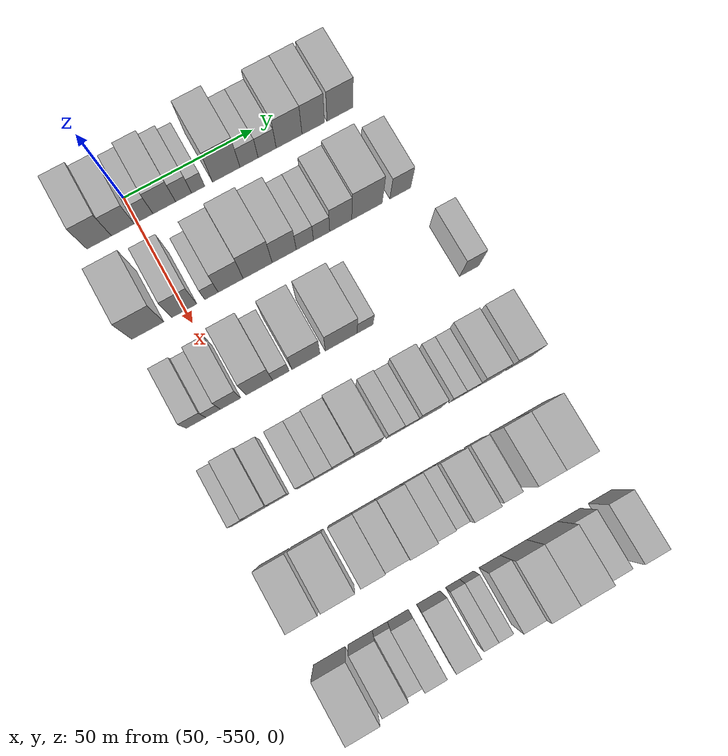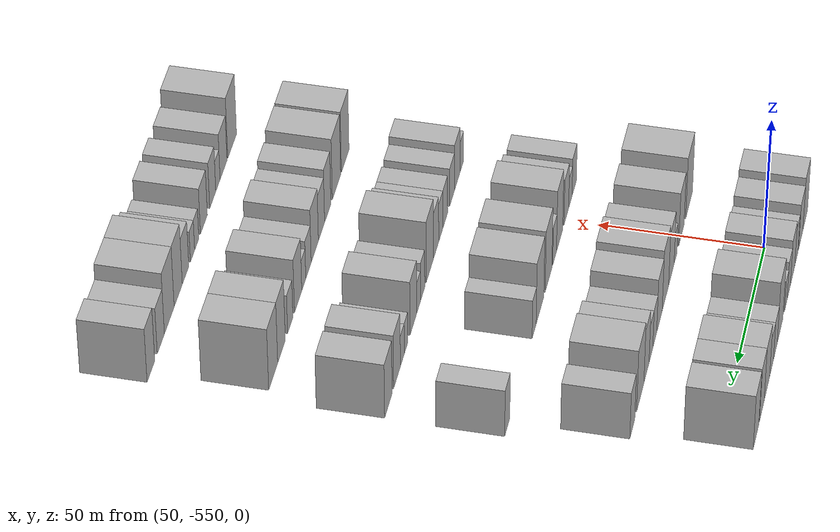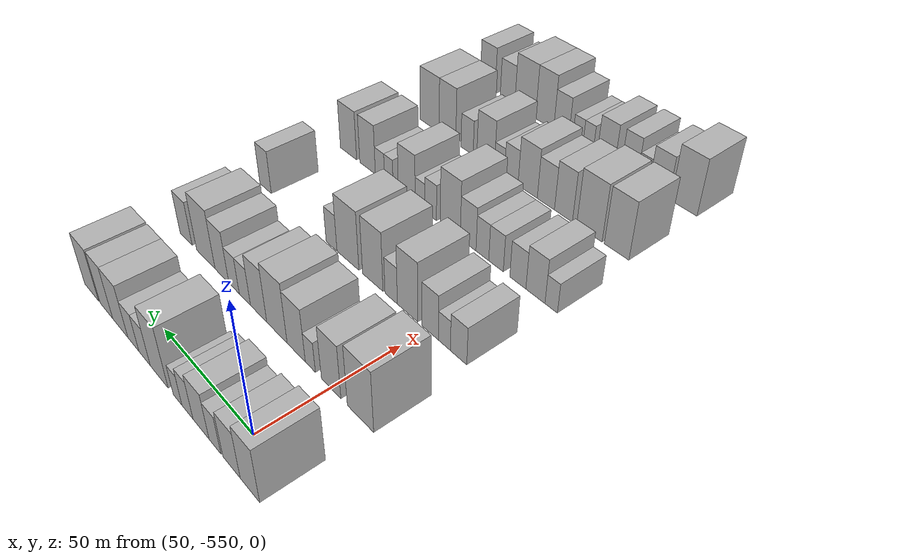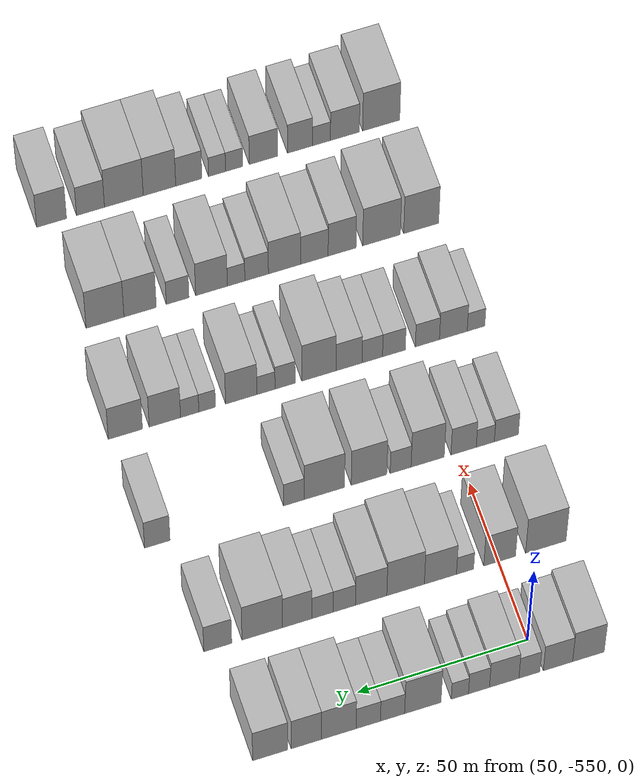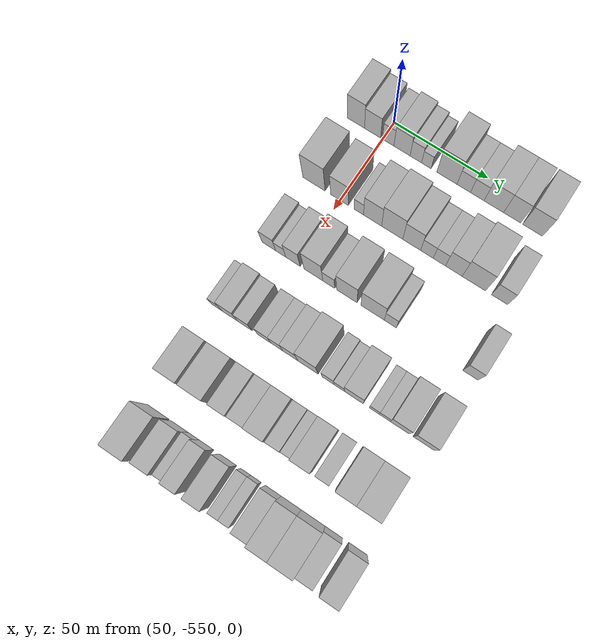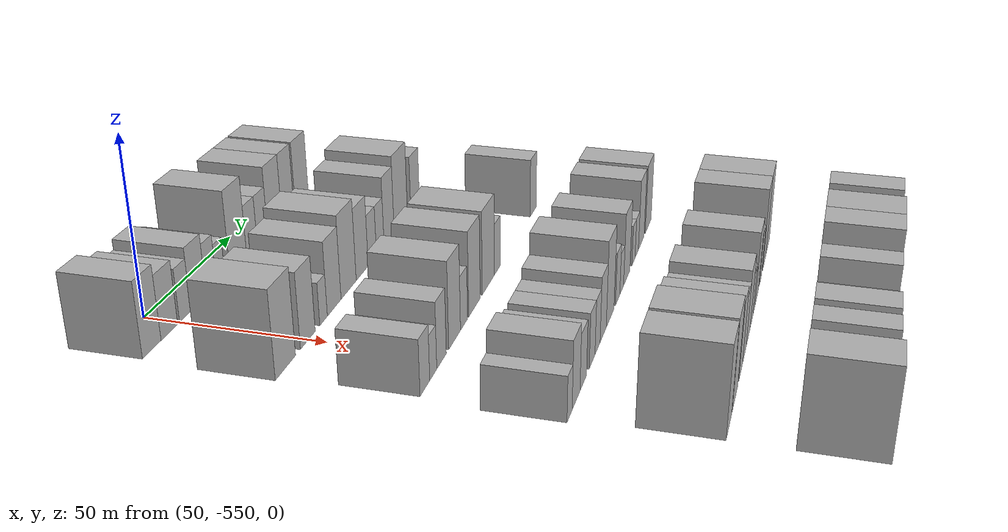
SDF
<sdf version="1.6">
 <world name="default">
  <model name="building_1">
   <static>1</static>
   <pose>50.0000 -564.3511 0 0.000000 0.000000 0.000000</pose>
   <link name="link">
    <pose>0 0 10.50 0 0 0</pose>
    <collision name="collision"><geometry><box><size>20.0000 9.2977 21.0000</size></box></geometry></collision>
    <visual name="visual">
     <cast_shadows>0</cast_shadows>
     <geometry><box><size>20.0000 9.2977 21.0000</size></box></geometry>
     <material>
      <script>
       <uri>model://HANNAS_wall/materials/scripts</uri>
       <uri>model://HANNAS_wall/materials/textures</uri>
       <name>vrc/HANNAS_wall</name>
      </script>
     </material>
    </visual>
   </link>
  </model>
  <model name="building_2">
   <static>1</static>
   <pose>50.0000 -555.3722 0 0.000000 0.000000 0.000000</pose>
   <link name="link">
    <pose>0 0 9.00 0 0 0</pose>
    <collision name="collision"><geometry><box><size>20.0000 8.6602 18.0000</size></box></geometry></collision>
    <visual name="visual">
     <cast_shadows>0</cast_shadows>
     <geometry><box><size>20.0000 8.6602 18.0000</size></box></geometry>
     <material>
      <script>
       <uri>model://HANNAS_wall/materials/scripts</uri>
       <uri>model://HANNAS_wall/materials/textures</uri>
       <name>vrc/HANNAS_wall</name>
      </script>
     </material>
    </visual>
   </link>
  </model>
  <model name="building_3">
   <static>1</static>
   <pose>50.0000 -546.9544 0 0.000000 0.000000 0.000000</pose>
   <link name="link">
    <pose>0 0 7.50 0 0 0</pose>
    <collision name="collision"><geometry><box><size>20.0000 6.1754 15.0000</size></box></geometry></collision>
    <visual name="visual">
     <cast_shadows>0</cast_shadows>
     <geometry><box><size>20.0000 6.1754 15.0000</size></box></geometry>
     <material>
      <script>
       <uri>model://HANNAS_wall/materials/scripts</uri>
       <uri>model://HANNAS_wall/materials/textures</uri>
       <name>vrc/HANNAS_wall</name>
      </script>
     </material>
    </visual>
   </link>
  </model>
  <model name="building_4">
   <static>1</static>
   <pose>50.0000 -539.5403 0 0.000000 0.000000 0.000000</pose>
   <link name="link">
    <pose>0 0 9.00 0 0 0</pose>
    <collision name="collision"><geometry><box><size>20.0000 8.6526 18.0000</size></box></geometry></collision>
    <visual name="visual">
     <cast_shadows>0</cast_shadows>
     <geometry><box><size>20.0000 8.6526 18.0000</size></box></geometry>
     <material>
      <script>
       <uri>model://HANNAS_wall/materials/scripts</uri>
       <uri>model://HANNAS_wall/materials/textures</uri>
       <name>vrc/HANNAS_wall</name>
      </script>
     </material>
    </visual>
   </link>
  </model>
  <model name="building_5">
   <static>1</static>
   <pose>50.0000 -532.1330 0 0.000000 0.000000 0.000000</pose>
   <link name="link">
    <pose>0 0 7.50 0 0 0</pose>
    <collision name="collision"><geometry><box><size>20.0000 6.1619 15.0000</size></box></geometry></collision>
    <visual name="visual">
     <cast_shadows>0</cast_shadows>
     <geometry><box><size>20.0000 6.1619 15.0000</size></box></geometry>
     <material>
      <script>
       <uri>model://HANNAS_wall/materials/scripts</uri>
       <uri>model://HANNAS_wall/materials/textures</uri>
       <name>vrc/HANNAS_wall</name>
      </script>
     </material>
    </visual>
   </link>
  </model>
  <model name="building_6">
   <static>1</static>
   <pose>50.0000 -526.5214 0 0.000000 0.000000 0.000000</pose>
   <link name="link">
    <pose>0 0 6.00 0 0 0</pose>
    <collision name="collision"><geometry><box><size>20.0000 5.0614 12.0000</size></box></geometry></collision>
    <visual name="visual">
     <cast_shadows>0</cast_shadows>
     <geometry><box><size>20.0000 5.0614 12.0000</size></box></geometry>
     <material>
      <script>
       <uri>model://HANNAS_wall/materials/scripts</uri>
       <uri>model://HANNAS_wall/materials/textures</uri>
       <name>vrc/HANNAS_wall</name>
      </script>
     </material>
    </visual>
   </link>
  </model>
  <model name="building_7">
   <static>1</static>
   <pose>50.0000 -515.6604 0 0.000000 0.000000 0.000000</pose>
   <link name="link">
    <pose>0 0 12.00 0 0 0</pose>
    <collision name="collision"><geometry><box><size>20.0000 10.6606 24.0000</size></box></geometry></collision>
    <visual name="visual">
     <cast_shadows>0</cast_shadows>
     <geometry><box><size>20.0000 10.6606 24.0000</size></box></geometry>
     <material>
      <script>
       <uri>model://HANNAS_wall/materials/scripts</uri>
       <uri>model://HANNAS_wall/materials/textures</uri>
       <name>vrc/HANNAS_wall</name>
      </script>
     </material>
    </visual>
   </link>
  </model>
  <model name="building_8">
   <static>1</static>
   <pose>50.0000 -506.7979 0 0.000000 0.000000 0.000000</pose>
   <link name="link">
    <pose>0 0 7.50 0 0 0</pose>
    <collision name="collision"><geometry><box><size>20.0000 7.0643 15.0000</size></box></geometry></collision>
    <visual name="visual">
     <cast_shadows>0</cast_shadows>
     <geometry><box><size>20.0000 7.0643 15.0000</size></box></geometry>
     <material>
      <script>
       <uri>model://HANNAS_wall/materials/scripts</uri>
       <uri>model://HANNAS_wall/materials/textures</uri>
       <name>vrc/HANNAS_wall</name>
      </script>
     </material>
    </visual>
   </link>
  </model>
  <model name="building_9">
   <static>1</static>
   <pose>50.0000 -499.7138 0 0.000000 0.000000 0.000000</pose>
   <link name="link">
    <pose>0 0 7.50 0 0 0</pose>
    <collision name="collision"><geometry><box><size>20.0000 7.1040 15.0000</size></box></geometry></collision>
    <visual name="visual">
     <cast_shadows>0</cast_shadows>
     <geometry><box><size>20.0000 7.1040 15.0000</size></box></geometry>
     <material>
      <script>
       <uri>model://HANNAS_wall/materials/scripts</uri>
       <uri>model://HANNAS_wall/materials/textures</uri>
       <name>vrc/HANNAS_wall</name>
      </script>
     </material>
    </visual>
   </link>
  </model>
  <model name="building_10">
   <static>1</static>
   <pose>50.0000 -491.1028 0 0.000000 0.000000 0.000000</pose>
   <link name="link">
    <pose>0 0 10.50 0 0 0</pose>
    <collision name="collision"><geometry><box><size>20.0000 10.1180 21.0000</size></box></geometry></collision>
    <visual name="visual">
     <cast_shadows>0</cast_shadows>
     <geometry><box><size>20.0000 10.1180 21.0000</size></box></geometry>
     <material>
      <script>
       <uri>model://HANNAS_wall/materials/scripts</uri>
       <uri>model://HANNAS_wall/materials/textures</uri>
       <name>vrc/HANNAS_wall</name>
      </script>
     </material>
    </visual>
   </link>
  </model>
  <model name="building_11">
   <static>1</static>
   <pose>50.0000 -481.6305 0 0.000000 0.000000 0.000000</pose>
   <link name="link">
    <pose>0 0 10.50 0 0 0</pose>
    <collision name="collision"><geometry><box><size>20.0000 8.8265 21.0000</size></box></geometry></collision>
    <visual name="visual">
     <cast_shadows>0</cast_shadows>
     <geometry><box><size>20.0000 8.8265 21.0000</size></box></geometry>
     <material>
      <script>
       <uri>model://HANNAS_wall/materials/scripts</uri>
       <uri>model://HANNAS_wall/materials/textures</uri>
       <name>vrc/HANNAS_wall</name>
      </script>
     </material>
    </visual>
   </link>
  </model>
  <model name="building_12">
   <static>1</static>
   <pose>50.0000 -471.1323 0 0.000000 0.000000 0.000000</pose>
   <link name="link">
    <pose>0 0 10.50 0 0 0</pose>
    <collision name="collision"><geometry><box><size>20.0000 10.1699 21.0000</size></box></geometry></collision>
    <visual name="visual">
     <cast_shadows>0</cast_shadows>
     <geometry><box><size>20.0000 10.1699 21.0000</size></box></geometry>
     <material>
      <script>
       <uri>model://HANNAS_wall/materials/scripts</uri>
       <uri>model://HANNAS_wall/materials/textures</uri>
       <name>vrc/HANNAS_wall</name>
      </script>
     </material>
    </visual>
   </link>
  </model>
  <model name="building_132">
   <static>1</static>
   <pose>85.0000 -564.0034 0 0.000000 0.000000 0.000000</pose>
   <link name="link">
    <pose>0 0 12.00 0 0 0</pose>
    <collision name="collision"><geometry><box><size>20.0000 11.9931 24.0000</size></box></geometry></collision>
    <visual name="visual">
     <cast_shadows>0</cast_shadows>
     <geometry><box><size>20.0000 11.9931 24.0000</size></box></geometry>
     <material>
      <script>
       <uri>model://HANNAS_wall/materials/scripts</uri>
       <uri>model://HANNAS_wall/materials/textures</uri>
       <name>vrc/HANNAS_wall</name>
      </script>
     </material>
    </visual>
   </link>
  </model>
  <model name="building_133">
   <static>1</static>
   <pose>85.0000 -550.2994 0 0.000000 0.000000 0.000000</pose>
   <link name="link">
    <pose>0 0 10.50 0 0 0</pose>
    <collision name="collision"><geometry><box><size>20.0000 9.4150 21.0000</size></box></geometry></collision>
    <visual name="visual">
     <cast_shadows>0</cast_shadows>
     <geometry><box><size>20.0000 9.4150 21.0000</size></box></geometry>
     <material>
      <script>
       <uri>model://HANNAS_wall/materials/scripts</uri>
       <uri>model://HANNAS_wall/materials/textures</uri>
       <name>vrc/HANNAS_wall</name>
      </script>
     </material>
    </visual>
   </link>
  </model>
  <model name="building_134">
   <static>1</static>
   <pose>85.0000 -540.0527 0 0.000000 0.000000 0.000000</pose>
   <link name="link">
    <pose>0 0 6.00 0 0 0</pose>
    <collision name="collision"><geometry><box><size>20.0000 5.0783 12.0000</size></box></geometry></collision>
    <visual name="visual">
     <cast_shadows>0</cast_shadows>
     <geometry><box><size>20.0000 5.0783 12.0000</size></box></geometry>
     <material>
      <script>
       <uri>model://HANNAS_wall/materials/scripts</uri>
       <uri>model://HANNAS_wall/materials/textures</uri>
       <name>vrc/HANNAS_wall</name>
      </script>
     </material>
    </visual>
   </link>
  </model>
  <model name="building_135">
   <static>1</static>
   <pose>85.0000 -532.7603 0 0.000000 0.000000 0.000000</pose>
   <link name="link">
    <pose>0 0 10.50 0 0 0</pose>
    <collision name="collision"><geometry><box><size>20.0000 9.5066 21.0000</size></box></geometry></collision>
    <visual name="visual">
     <cast_shadows>0</cast_shadows>
     <geometry><box><size>20.0000 9.5066 21.0000</size></box></geometry>
     <material>
      <script>
       <uri>model://HANNAS_wall/materials/scripts</uri>
       <uri>model://HANNAS_wall/materials/textures</uri>
       <name>vrc/HANNAS_wall</name>
      </script>
     </material>
    </visual>
   </link>
  </model>
  <model name="building_136">
   <static>1</static>
   <pose>85.0000 -522.4589 0 0.000000 0.000000 0.000000</pose>
   <link name="link">
    <pose>0 0 12.00 0 0 0</pose>
    <collision name="collision"><geometry><box><size>20.0000 11.0961 24.0000</size></box></geometry></collision>
    <visual name="visual">
     <cast_shadows>0</cast_shadows>
     <geometry><box><size>20.0000 11.0961 24.0000</size></box></geometry>
     <material>
      <script>
       <uri>model://HANNAS_wall/materials/scripts</uri>
       <uri>model://HANNAS_wall/materials/textures</uri>
       <name>vrc/HANNAS_wall</name>
      </script>
     </material>
    </visual>
   </link>
  </model>
  <model name="building_137">
   <static>1</static>
   <pose>85.0000 -512.2875 0 0.000000 0.000000 0.000000</pose>
   <link name="link">
    <pose>0 0 10.50 0 0 0</pose>
    <collision name="collision"><geometry><box><size>20.0000 9.2467 21.0000</size></box></geometry></collision>
    <visual name="visual">
     <cast_shadows>0</cast_shadows>
     <geometry><box><size>20.0000 9.2467 21.0000</size></box></geometry>
     <material>
      <script>
       <uri>model://HANNAS_wall/materials/scripts</uri>
       <uri>model://HANNAS_wall/materials/textures</uri>
       <name>vrc/HANNAS_wall</name>
      </script>
     </material>
    </visual>
   </link>
  </model>
  <model name="building_138">
   <static>1</static>
   <pose>85.0000 -504.3648 0 0.000000 0.000000 0.000000</pose>
   <link name="link">
    <pose>0 0 7.50 0 0 0</pose>
    <collision name="collision"><geometry><box><size>20.0000 6.5987 15.0000</size></box></geometry></collision>
    <visual name="visual">
     <cast_shadows>0</cast_shadows>
     <geometry><box><size>20.0000 6.5987 15.0000</size></box></geometry>
     <material>
      <script>
       <uri>model://HANNAS_wall/materials/scripts</uri>
       <uri>model://HANNAS_wall/materials/textures</uri>
       <name>vrc/HANNAS_wall</name>
      </script>
     </material>
    </visual>
   </link>
  </model>
  <model name="building_139">
   <static>1</static>
   <pose>85.0000 -497.9217 0 0.000000 0.000000 0.000000</pose>
   <link name="link">
    <pose>0 0 7.50 0 0 0</pose>
    <collision name="collision"><geometry><box><size>20.0000 6.2874 15.0000</size></box></geometry></collision>
    <visual name="visual">
     <cast_shadows>0</cast_shadows>
     <geometry><box><size>20.0000 6.2874 15.0000</size></box></geometry>
     <material>
      <script>
       <uri>model://HANNAS_wall/materials/scripts</uri>
       <uri>model://HANNAS_wall/materials/textures</uri>
       <name>vrc/HANNAS_wall</name>
      </script>
     </material>
    </visual>
   </link>
  </model>
  <model name="building_140">
   <static>1</static>
   <pose>85.0000 -490.4993 0 0.000000 0.000000 0.000000</pose>
   <link name="link">
    <pose>0 0 10.50 0 0 0</pose>
    <collision name="collision"><geometry><box><size>20.0000 8.5575 21.0000</size></box></geometry></collision>
    <visual name="visual">
     <cast_shadows>0</cast_shadows>
     <geometry><box><size>20.0000 8.5575 21.0000</size></box></geometry>
     <material>
      <script>
       <uri>model://HANNAS_wall/materials/scripts</uri>
       <uri>model://HANNAS_wall/materials/textures</uri>
       <name>vrc/HANNAS_wall</name>
      </script>
     </material>
    </visual>
   </link>
  </model>
  <model name="building_141">
   <static>1</static>
   <pose>85.0000 -480.2726 0 0.000000 0.000000 0.000000</pose>
   <link name="link">
    <pose>0 0 12.00 0 0 0</pose>
    <collision name="collision"><geometry><box><size>20.0000 11.8959 24.0000</size></box></geometry></collision>
    <visual name="visual">
     <cast_shadows>0</cast_shadows>
     <geometry><box><size>20.0000 11.8959 24.0000</size></box></geometry>
     <material>
      <script>
       <uri>model://HANNAS_wall/materials/scripts</uri>
       <uri>model://HANNAS_wall/materials/textures</uri>
       <name>vrc/HANNAS_wall</name>
      </script>
     </material>
    </visual>
   </link>
  </model>
  <model name="building_142">
   <static>1</static>
   <pose>85.0000 -467.2445 0 0.000000 0.000000 0.000000</pose>
   <link name="link">
    <pose>0 0 9.00 0 0 0</pose>
    <collision name="collision"><geometry><box><size>20.0000 8.1602 18.0000</size></box></geometry></collision>
    <visual name="visual">
     <cast_shadows>0</cast_shadows>
     <geometry><box><size>20.0000 8.1602 18.0000</size></box></geometry>
     <material>
      <script>
       <uri>model://HANNAS_wall/materials/scripts</uri>
       <uri>model://HANNAS_wall/materials/textures</uri>
       <name>vrc/HANNAS_wall</name>
      </script>
     </material>
    </visual>
   </link>
  </model>
  <model name="building_257">
   <static>1</static>
   <pose>120.0000 -564.4026 0 0.000000 0.000000 0.000000</pose>
   <link name="link">
    <pose>0 0 7.50 0 0 0</pose>
    <collision name="collision"><geometry><box><size>20.0000 7.1949 15.0000</size></box></geometry></collision>
    <visual name="visual">
     <cast_shadows>0</cast_shadows>
     <geometry><box><size>20.0000 7.1949 15.0000</size></box></geometry>
     <material>
      <script>
       <uri>model://HANNAS_wall/materials/scripts</uri>
       <uri>model://HANNAS_wall/materials/textures</uri>
       <name>vrc/HANNAS_wall</name>
      </script>
     </material>
    </visual>
   </link>
  </model>
  <model name="building_258">
   <static>1</static>
   <pose>120.0000 -558.0997 0 0.000000 0.000000 0.000000</pose>
   <link name="link">
    <pose>0 0 6.00 0 0 0</pose>
    <collision name="collision"><geometry><box><size>20.0000 5.4108 12.0000</size></box></geometry></collision>
    <visual name="visual">
     <cast_shadows>0</cast_shadows>
     <geometry><box><size>20.0000 5.4108 12.0000</size></box></geometry>
     <material>
      <script>
       <uri>model://HANNAS_wall/materials/scripts</uri>
       <uri>model://HANNAS_wall/materials/textures</uri>
       <name>vrc/HANNAS_wall</name>
      </script>
     </material>
    </visual>
   </link>
  </model>
  <model name="building_259">
   <static>1</static>
   <pose>120.0000 -551.6050 0 0.000000 0.000000 0.000000</pose>
   <link name="link">
    <pose>0 0 9.00 0 0 0</pose>
    <collision name="collision"><geometry><box><size>20.0000 7.5788 18.0000</size></box></geometry></collision>
    <visual name="visual">
     <cast_shadows>0</cast_shadows>
     <geometry><box><size>20.0000 7.5788 18.0000</size></box></geometry>
     <material>
      <script>
       <uri>model://HANNAS_wall/materials/scripts</uri>
       <uri>model://HANNAS_wall/materials/textures</uri>
       <name>vrc/HANNAS_wall</name>
      </script>
     </material>
    </visual>
   </link>
  </model>
  <model name="building_260">
   <static>1</static>
   <pose>120.0000 -540.8752 0 0.000000 0.000000 0.000000</pose>
   <link name="link">
    <pose>0 0 12.00 0 0 0</pose>
    <collision name="collision"><geometry><box><size>20.0000 9.8808 24.0000</size></box></geometry></collision>
    <visual name="visual">
     <cast_shadows>0</cast_shadows>
     <geometry><box><size>20.0000 9.8808 24.0000</size></box></geometry>
     <material>
      <script>
       <uri>model://HANNAS_wall/materials/scripts</uri>
       <uri>model://HANNAS_wall/materials/textures</uri>
       <name>vrc/HANNAS_wall</name>
      </script>
     </material>
    </visual>
   </link>
  </model>
  <model name="building_261">
   <static>1</static>
   <pose>120.0000 -532.8202 0 0.000000 0.000000 0.000000</pose>
   <link name="link">
    <pose>0 0 7.50 0 0 0</pose>
    <collision name="collision"><geometry><box><size>20.0000 6.2291 15.0000</size></box></geometry></collision>
    <visual name="visual">
     <cast_shadows>0</cast_shadows>
     <geometry><box><size>20.0000 6.2291 15.0000</size></box></geometry>
     <material>
      <script>
       <uri>model://HANNAS_wall/materials/scripts</uri>
       <uri>model://HANNAS_wall/materials/textures</uri>
       <name>vrc/HANNAS_wall</name>
      </script>
     </material>
    </visual>
   </link>
  </model>
  <model name="building_262">
   <static>1</static>
   <pose>120.0000 -523.4052 0 0.000000 0.000000 0.000000</pose>
   <link name="link">
    <pose>0 0 12.00 0 0 0</pose>
    <collision name="collision"><geometry><box><size>20.0000 10.6009 24.0000</size></box></geometry></collision>
    <visual name="visual">
     <cast_shadows>0</cast_shadows>
     <geometry><box><size>20.0000 10.6009 24.0000</size></box></geometry>
     <material>
      <script>
       <uri>model://HANNAS_wall/materials/scripts</uri>
       <uri>model://HANNAS_wall/materials/textures</uri>
       <name>vrc/HANNAS_wall</name>
      </script>
     </material>
    </visual>
   </link>
  </model>
  <model name="building_263">
   <static>1</static>
   <pose>120.0000 -510.1159 0 0.000000 0.000000 0.000000</pose>
   <link name="link">
    <pose>0 0 12.00 0 0 0</pose>
    <collision name="collision"><geometry><box><size>20.0000 11.9778 24.0000</size></box></geometry></collision>
    <visual name="visual">
     <cast_shadows>0</cast_shadows>
     <geometry><box><size>20.0000 11.9778 24.0000</size></box></geometry>
     <material>
      <script>
       <uri>model://HANNAS_wall/materials/scripts</uri>
       <uri>model://HANNAS_wall/materials/textures</uri>
       <name>vrc/HANNAS_wall</name>
      </script>
     </material>
    </visual>
   </link>
  </model>
  <model name="building_264">
   <static>1</static>
   <pose>120.0000 -501.0561 0 0.000000 0.000000 0.000000</pose>
   <link name="link">
    <pose>0 0 7.50 0 0 0</pose>
    <collision name="collision"><geometry><box><size>20.0000 6.1418 15.0000</size></box></geometry></collision>
    <visual name="visual">
     <cast_shadows>0</cast_shadows>
     <geometry><box><size>20.0000 6.1418 15.0000</size></box></geometry>
     <material>
      <script>
       <uri>model://HANNAS_wall/materials/scripts</uri>
       <uri>model://HANNAS_wall/materials/textures</uri>
       <name>vrc/HANNAS_wall</name>
      </script>
     </material>
    </visual>
   </link>
  </model>
  <model name="building_265">
   <static>1</static>
   <pose>120.0000 -460.7286 0 0.000000 0.000000 0.000000</pose>
   <link name="link">
    <pose>0 0 9.00 0 0 0</pose>
    <collision name="collision"><geometry><box><size>20.0000 7.5044 18.0000</size></box></geometry></collision>
    <visual name="visual">
     <cast_shadows>0</cast_shadows>
     <geometry><box><size>20.0000 7.5044 18.0000</size></box></geometry>
     <material>
      <script>
       <uri>model://HANNAS_wall/materials/scripts</uri>
       <uri>model://HANNAS_wall/materials/textures</uri>
       <name>vrc/HANNAS_wall</name>
      </script>
     </material>
    </visual>
   </link>
  </model>
  <model name="building_380">
   <static>1</static>
   <pose>155.0000 -567.3481 0 0.000000 0.000000 0.000000</pose>
   <link name="link">
    <pose>0 0 6.00 0 0 0</pose>
    <collision name="collision"><geometry><box><size>20.0000 5.3039 12.0000</size></box></geometry></collision>
    <visual name="visual">
     <cast_shadows>0</cast_shadows>
     <geometry><box><size>20.0000 5.3039 12.0000</size></box></geometry>
     <material>
      <script>
       <uri>model://HANNAS_wall/materials/scripts</uri>
       <uri>model://HANNAS_wall/materials/textures</uri>
       <name>vrc/HANNAS_wall</name>
      </script>
     </material>
    </visual>
   </link>
  </model>
  <model name="building_381">
   <static>1</static>
   <pose>155.0000 -560.5132 0 0.000000 0.000000 0.000000</pose>
   <link name="link">
    <pose>0 0 9.00 0 0 0</pose>
    <collision name="collision"><geometry><box><size>20.0000 8.3658 18.0000</size></box></geometry></collision>
    <visual name="visual">
     <cast_shadows>0</cast_shadows>
     <geometry><box><size>20.0000 8.3658 18.0000</size></box></geometry>
     <material>
      <script>
       <uri>model://HANNAS_wall/materials/scripts</uri>
       <uri>model://HANNAS_wall/materials/textures</uri>
       <name>vrc/HANNAS_wall</name>
      </script>
     </material>
    </visual>
   </link>
  </model>
  <model name="building_382">
   <static>1</static>
   <pose>155.0000 -552.6888 0 0.000000 0.000000 0.000000</pose>
   <link name="link">
    <pose>0 0 7.50 0 0 0</pose>
    <collision name="collision"><geometry><box><size>20.0000 7.2830 15.0000</size></box></geometry></collision>
    <visual name="visual">
     <cast_shadows>0</cast_shadows>
     <geometry><box><size>20.0000 7.2830 15.0000</size></box></geometry>
     <material>
      <script>
       <uri>model://HANNAS_wall/materials/scripts</uri>
       <uri>model://HANNAS_wall/materials/textures</uri>
       <name>vrc/HANNAS_wall</name>
      </script>
     </material>
    </visual>
   </link>
  </model>
  <model name="building_383">
   <static>1</static>
   <pose>155.0000 -542.6248 0 0.000000 0.000000 0.000000</pose>
   <link name="link">
    <pose>0 0 7.50 0 0 0</pose>
    <collision name="collision"><geometry><box><size>20.0000 6.8449 15.0000</size></box></geometry></collision>
    <visual name="visual">
     <cast_shadows>0</cast_shadows>
     <geometry><box><size>20.0000 6.8449 15.0000</size></box></geometry>
     <material>
      <script>
       <uri>model://HANNAS_wall/materials/scripts</uri>
       <uri>model://HANNAS_wall/materials/textures</uri>
       <name>vrc/HANNAS_wall</name>
      </script>
     </material>
    </visual>
   </link>
  </model>
  <model name="building_384">
   <static>1</static>
   <pose>155.0000 -536.1238 0 0.000000 0.000000 0.000000</pose>
   <link name="link">
    <pose>0 0 7.50 0 0 0</pose>
    <collision name="collision"><geometry><box><size>20.0000 6.1572 15.0000</size></box></geometry></collision>
    <visual name="visual">
     <cast_shadows>0</cast_shadows>
     <geometry><box><size>20.0000 6.1572 15.0000</size></box></geometry>
     <material>
      <script>
       <uri>model://HANNAS_wall/materials/scripts</uri>
       <uri>model://HANNAS_wall/materials/textures</uri>
       <name>vrc/HANNAS_wall</name>
      </script>
     </material>
    </visual>
   </link>
  </model>
  <model name="building_385">
   <static>1</static>
   <pose>155.0000 -529.1314 0 0.000000 0.000000 0.000000</pose>
   <link name="link">
    <pose>0 0 9.00 0 0 0</pose>
    <collision name="collision"><geometry><box><size>20.0000 7.8275 18.0000</size></box></geometry></collision>
    <visual name="visual">
     <cast_shadows>0</cast_shadows>
     <geometry><box><size>20.0000 7.8275 18.0000</size></box></geometry>
     <material>
      <script>
       <uri>model://HANNAS_wall/materials/scripts</uri>
       <uri>model://HANNAS_wall/materials/textures</uri>
       <name>vrc/HANNAS_wall</name>
      </script>
     </material>
    </visual>
   </link>
  </model>
  <model name="building_386">
   <static>1</static>
   <pose>155.0000 -520.0996 0 0.000000 0.000000 0.000000</pose>
   <link name="link">
    <pose>0 0 12.00 0 0 0</pose>
    <collision name="collision"><geometry><box><size>20.0000 10.2360 24.0000</size></box></geometry></collision>
    <visual name="visual">
     <cast_shadows>0</cast_shadows>
     <geometry><box><size>20.0000 10.2360 24.0000</size></box></geometry>
     <material>
      <script>
       <uri>model://HANNAS_wall/materials/scripts</uri>
       <uri>model://HANNAS_wall/materials/textures</uri>
       <name>vrc/HANNAS_wall</name>
      </script>
     </material>
    </visual>
   </link>
  </model>
  <model name="building_387">
   <static>1</static>
   <pose>155.0000 -509.9800 0 0.000000 0.000000 0.000000</pose>
   <link name="link">
    <pose>0 0 7.50 0 0 0</pose>
    <collision name="collision"><geometry><box><size>20.0000 6.0033 15.0000</size></box></geometry></collision>
    <visual name="visual">
     <cast_shadows>0</cast_shadows>
     <geometry><box><size>20.0000 6.0033 15.0000</size></box></geometry>
     <material>
      <script>
       <uri>model://HANNAS_wall/materials/scripts</uri>
       <uri>model://HANNAS_wall/materials/textures</uri>
       <name>vrc/HANNAS_wall</name>
      </script>
     </material>
    </visual>
   </link>
  </model>
  <model name="building_388">
   <static>1</static>
   <pose>155.0000 -504.2860 0 0.000000 0.000000 0.000000</pose>
   <link name="link">
    <pose>0 0 6.00 0 0 0</pose>
    <collision name="collision"><geometry><box><size>20.0000 5.3847 12.0000</size></box></geometry></collision>
    <visual name="visual">
     <cast_shadows>0</cast_shadows>
     <geometry><box><size>20.0000 5.3847 12.0000</size></box></geometry>
     <material>
      <script>
       <uri>model://HANNAS_wall/materials/scripts</uri>
       <uri>model://HANNAS_wall/materials/textures</uri>
       <name>vrc/HANNAS_wall</name>
      </script>
     </material>
    </visual>
   </link>
  </model>
  <model name="building_389">
   <static>1</static>
   <pose>155.0000 -496.9024 0 0.000000 0.000000 0.000000</pose>
   <link name="link">
    <pose>0 0 10.50 0 0 0</pose>
    <collision name="collision"><geometry><box><size>20.0000 9.3824 21.0000</size></box></geometry></collision>
    <visual name="visual">
     <cast_shadows>0</cast_shadows>
     <geometry><box><size>20.0000 9.3824 21.0000</size></box></geometry>
     <material>
      <script>
       <uri>model://HANNAS_wall/materials/scripts</uri>
       <uri>model://HANNAS_wall/materials/textures</uri>
       <name>vrc/HANNAS_wall</name>
      </script>
     </material>
    </visual>
   </link>
  </model>
  <model name="building_390">
   <static>1</static>
   <pose>155.0000 -486.7314 0 0.000000 0.000000 0.000000</pose>
   <link name="link">
    <pose>0 0 6.00 0 0 0</pose>
    <collision name="collision"><geometry><box><size>20.0000 4.9596 12.0000</size></box></geometry></collision>
    <visual name="visual">
     <cast_shadows>0</cast_shadows>
     <geometry><box><size>20.0000 4.9596 12.0000</size></box></geometry>
     <material>
      <script>
       <uri>model://HANNAS_wall/materials/scripts</uri>
       <uri>model://HANNAS_wall/materials/textures</uri>
       <name>vrc/HANNAS_wall</name>
      </script>
     </material>
    </visual>
   </link>
  </model>
  <model name="building_391">
   <static>1</static>
   <pose>155.0000 -481.5335 0 0.000000 0.000000 0.000000</pose>
   <link name="link">
    <pose>0 0 6.00 0 0 0</pose>
    <collision name="collision"><geometry><box><size>20.0000 5.4363 12.0000</size></box></geometry></collision>
    <visual name="visual">
     <cast_shadows>0</cast_shadows>
     <geometry><box><size>20.0000 5.4363 12.0000</size></box></geometry>
     <material>
      <script>
       <uri>model://HANNAS_wall/materials/scripts</uri>
       <uri>model://HANNAS_wall/materials/textures</uri>
       <name>vrc/HANNAS_wall</name>
      </script>
     </material>
    </visual>
   </link>
  </model>
  <model name="building_392">
   <static>1</static>
   <pose>155.0000 -474.1463 0 0.000000 0.000000 0.000000</pose>
   <link name="link">
    <pose>0 0 10.50 0 0 0</pose>
    <collision name="collision"><geometry><box><size>20.0000 9.3380 21.0000</size></box></geometry></collision>
    <visual name="visual">
     <cast_shadows>0</cast_shadows>
     <geometry><box><size>20.0000 9.3380 21.0000</size></box></geometry>
     <material>
      <script>
       <uri>model://HANNAS_wall/materials/scripts</uri>
       <uri>model://HANNAS_wall/materials/textures</uri>
       <name>vrc/HANNAS_wall</name>
      </script>
     </material>
    </visual>
   </link>
  </model>
  <model name="building_393">
   <static>1</static>
   <pose>155.0000 -462.4055 0 0.000000 0.000000 0.000000</pose>
   <link name="link">
    <pose>0 0 10.50 0 0 0</pose>
    <collision name="collision"><geometry><box><size>20.0000 10.1437 21.0000</size></box></geometry></collision>
    <visual name="visual">
     <cast_shadows>0</cast_shadows>
     <geometry><box><size>20.0000 10.1437 21.0000</size></box></geometry>
     <material>
      <script>
       <uri>model://HANNAS_wall/materials/scripts</uri>
       <uri>model://HANNAS_wall/materials/textures</uri>
       <name>vrc/HANNAS_wall</name>
      </script>
     </material>
    </visual>
   </link>
  </model>
  <model name="building_505">
   <static>1</static>
   <pose>190.0000 -562.6939 0 0.000000 0.000000 0.000000</pose>
   <link name="link">
    <pose>0 0 12.00 0 0 0</pose>
    <collision name="collision"><geometry><box><size>20.0000 10.6123 24.0000</size></box></geometry></collision>
    <visual name="visual">
     <cast_shadows>0</cast_shadows>
     <geometry><box><size>20.0000 10.6123 24.0000</size></box></geometry>
     <material>
      <script>
       <uri>model://HANNAS_wall/materials/scripts</uri>
       <uri>model://HANNAS_wall/materials/textures</uri>
       <name>vrc/HANNAS_wall</name>
      </script>
     </material>
    </visual>
   </link>
  </model>
  <model name="building_506">
   <static>1</static>
   <pose>190.0000 -550.6702 0 0.000000 0.000000 0.000000</pose>
   <link name="link">
    <pose>0 0 12.00 0 0 0</pose>
    <collision name="collision"><geometry><box><size>20.0000 11.4350 24.0000</size></box></geometry></collision>
    <visual name="visual">
     <cast_shadows>0</cast_shadows>
     <geometry><box><size>20.0000 11.4350 24.0000</size></box></geometry>
     <material>
      <script>
       <uri>model://HANNAS_wall/materials/scripts</uri>
       <uri>model://HANNAS_wall/materials/textures</uri>
       <name>vrc/HANNAS_wall</name>
      </script>
     </material>
    </visual>
   </link>
  </model>
  <model name="building_507">
   <static>1</static>
   <pose>190.0000 -538.7254 0 0.000000 0.000000 0.000000</pose>
   <link name="link">
    <pose>0 0 10.50 0 0 0</pose>
    <collision name="collision"><geometry><box><size>20.0000 8.4545 21.0000</size></box></geometry></collision>
    <visual name="visual">
     <cast_shadows>0</cast_shadows>
     <geometry><box><size>20.0000 8.4545 21.0000</size></box></geometry>
     <material>
      <script>
       <uri>model://HANNAS_wall/materials/scripts</uri>
       <uri>model://HANNAS_wall/materials/textures</uri>
       <name>vrc/HANNAS_wall</name>
      </script>
     </material>
    </visual>
   </link>
  </model>
  <model name="building_508">
   <static>1</static>
   <pose>190.0000 -530.3210 0 0.000000 0.000000 0.000000</pose>
   <link name="link">
    <pose>0 0 9.00 0 0 0</pose>
    <collision name="collision"><geometry><box><size>20.0000 8.3544 18.0000</size></box></geometry></collision>
    <visual name="visual">
     <cast_shadows>0</cast_shadows>
     <geometry><box><size>20.0000 8.3544 18.0000</size></box></geometry>
     <material>
      <script>
       <uri>model://HANNAS_wall/materials/scripts</uri>
       <uri>model://HANNAS_wall/materials/textures</uri>
       <name>vrc/HANNAS_wall</name>
      </script>
     </material>
    </visual>
   </link>
  </model>
  <model name="building_509">
   <static>1</static>
   <pose>190.0000 -521.3101 0 0.000000 0.000000 0.000000</pose>
   <link name="link">
    <pose>0 0 10.50 0 0 0</pose>
    <collision name="collision"><geometry><box><size>20.0000 9.6675 21.0000</size></box></geometry></collision>
    <visual name="visual">
     <cast_shadows>0</cast_shadows>
     <geometry><box><size>20.0000 9.6675 21.0000</size></box></geometry>
     <material>
      <script>
       <uri>model://HANNAS_wall/materials/scripts</uri>
       <uri>model://HANNAS_wall/materials/textures</uri>
       <name>vrc/HANNAS_wall</name>
      </script>
     </material>
    </visual>
   </link>
  </model>
  <model name="building_510">
   <static>1</static>
   <pose>190.0000 -512.9267 0 0.000000 0.000000 0.000000</pose>
   <link name="link">
    <pose>0 0 7.50 0 0 0</pose>
    <collision name="collision"><geometry><box><size>20.0000 7.0993 15.0000</size></box></geometry></collision>
    <visual name="visual">
     <cast_shadows>0</cast_shadows>
     <geometry><box><size>20.0000 7.0993 15.0000</size></box></geometry>
     <material>
      <script>
       <uri>model://HANNAS_wall/materials/scripts</uri>
       <uri>model://HANNAS_wall/materials/textures</uri>
       <name>vrc/HANNAS_wall</name>
      </script>
     </material>
    </visual>
   </link>
  </model>
  <model name="building_511">
   <static>1</static>
   <pose>190.0000 -506.7396 0 0.000000 0.000000 0.000000</pose>
   <link name="link">
    <pose>0 0 6.00 0 0 0</pose>
    <collision name="collision"><geometry><box><size>20.0000 5.2750 12.0000</size></box></geometry></collision>
    <visual name="visual">
     <cast_shadows>0</cast_shadows>
     <geometry><box><size>20.0000 5.2750 12.0000</size></box></geometry>
     <material>
      <script>
       <uri>model://HANNAS_wall/materials/scripts</uri>
       <uri>model://HANNAS_wall/materials/textures</uri>
       <name>vrc/HANNAS_wall</name>
      </script>
     </material>
    </visual>
   </link>
  </model>
  <model name="building_512">
   <static>1</static>
   <pose>190.0000 -499.3365 0 0.000000 0.000000 0.000000</pose>
   <link name="link">
    <pose>0 0 10.50 0 0 0</pose>
    <collision name="collision"><geometry><box><size>20.0000 9.5311 21.0000</size></box></geometry></collision>
    <visual name="visual">
     <cast_shadows>0</cast_shadows>
     <geometry><box><size>20.0000 9.5311 21.0000</size></box></geometry>
     <material>
      <script>
       <uri>model://HANNAS_wall/materials/scripts</uri>
       <uri>model://HANNAS_wall/materials/textures</uri>
       <name>vrc/HANNAS_wall</name>
      </script>
     </material>
    </visual>
   </link>
  </model>
  <model name="building_513">
   <static>1</static>
   <pose>190.0000 -489.1605 0 0.000000 0.000000 0.000000</pose>
   <link name="link">
    <pose>0 0 7.50 0 0 0</pose>
    <collision name="collision"><geometry><box><size>20.0000 6.8209 15.0000</size></box></geometry></collision>
    <visual name="visual">
     <cast_shadows>0</cast_shadows>
     <geometry><box><size>20.0000 6.8209 15.0000</size></box></geometry>
     <material>
      <script>
       <uri>model://HANNAS_wall/materials/scripts</uri>
       <uri>model://HANNAS_wall/materials/textures</uri>
       <name>vrc/HANNAS_wall</name>
      </script>
     </material>
    </visual>
   </link>
  </model>
  <model name="building_514">
   <static>1</static>
   <pose>190.0000 -477.9049 0 0.000000 0.000000 0.000000</pose>
   <link name="link">
    <pose>0 0 12.00 0 0 0</pose>
    <collision name="collision"><geometry><box><size>20.0000 9.6903 24.0000</size></box></geometry></collision>
    <visual name="visual">
     <cast_shadows>0</cast_shadows>
     <geometry><box><size>20.0000 9.6903 24.0000</size></box></geometry>
     <material>
      <script>
       <uri>model://HANNAS_wall/materials/scripts</uri>
       <uri>model://HANNAS_wall/materials/textures</uri>
       <name>vrc/HANNAS_wall</name>
      </script>
     </material>
    </visual>
   </link>
  </model>
  <model name="building_515">
   <static>1</static>
   <pose>190.0000 -467.3853 0 0.000000 0.000000 0.000000</pose>
   <link name="link">
    <pose>0 0 12.00 0 0 0</pose>
    <collision name="collision"><geometry><box><size>20.0000 11.3488 24.0000</size></box></geometry></collision>
    <visual name="visual">
     <cast_shadows>0</cast_shadows>
     <geometry><box><size>20.0000 11.3488 24.0000</size></box></geometry>
     <material>
      <script>
       <uri>model://HANNAS_wall/materials/scripts</uri>
       <uri>model://HANNAS_wall/materials/textures</uri>
       <name>vrc/HANNAS_wall</name>
      </script>
     </material>
    </visual>
   </link>
  </model>
  <model name="building_632">
   <static>1</static>
   <pose>225.0000 -562.3269 0 0.000000 0.000000 0.000000</pose>
   <link name="link">
    <pose>0 0 12.00 0 0 0</pose>
    <collision name="collision"><geometry><box><size>20.0000 11.3462 24.0000</size></box></geometry></collision>
    <visual name="visual">
     <cast_shadows>0</cast_shadows>
     <geometry><box><size>20.0000 11.3462 24.0000</size></box></geometry>
     <material>
      <script>
       <uri>model://HANNAS_wall/materials/scripts</uri>
       <uri>model://HANNAS_wall/materials/textures</uri>
       <name>vrc/HANNAS_wall</name>
      </script>
     </material>
    </visual>
   </link>
  </model>
  <model name="building_633">
   <static>1</static>
   <pose>225.0000 -551.2434 0 0.000000 0.000000 0.000000</pose>
   <link name="link">
    <pose>0 0 9.00 0 0 0</pose>
    <collision name="collision"><geometry><box><size>20.0000 8.8207 18.0000</size></box></geometry></collision>
    <visual name="visual">
     <cast_shadows>0</cast_shadows>
     <geometry><box><size>20.0000 8.8207 18.0000</size></box></geometry>
     <material>
      <script>
       <uri>model://HANNAS_wall/materials/scripts</uri>
       <uri>model://HANNAS_wall/materials/textures</uri>
       <name>vrc/HANNAS_wall</name>
      </script>
     </material>
    </visual>
   </link>
  </model>
  <model name="building_634">
   <static>1</static>
   <pose>225.0000 -544.0922 0 0.000000 0.000000 0.000000</pose>
   <link name="link">
    <pose>0 0 6.00 0 0 0</pose>
    <collision name="collision"><geometry><box><size>20.0000 5.4817 12.0000</size></box></geometry></collision>
    <visual name="visual">
     <cast_shadows>0</cast_shadows>
     <geometry><box><size>20.0000 5.4817 12.0000</size></box></geometry>
     <material>
      <script>
       <uri>model://HANNAS_wall/materials/scripts</uri>
       <uri>model://HANNAS_wall/materials/textures</uri>
       <name>vrc/HANNAS_wall</name>
      </script>
     </material>
    </visual>
   </link>
  </model>
  <model name="building_635">
   <static>1</static>
   <pose>225.0000 -537.5450 0 0.000000 0.000000 0.000000</pose>
   <link name="link">
    <pose>0 0 9.00 0 0 0</pose>
    <collision name="collision"><geometry><box><size>20.0000 7.6126 18.0000</size></box></geometry></collision>
    <visual name="visual">
     <cast_shadows>0</cast_shadows>
     <geometry><box><size>20.0000 7.6126 18.0000</size></box></geometry>
     <material>
      <script>
       <uri>model://HANNAS_wall/materials/scripts</uri>
       <uri>model://HANNAS_wall/materials/textures</uri>
       <name>vrc/HANNAS_wall</name>
      </script>
     </material>
    </visual>
   </link>
  </model>
  <model name="building_636">
   <static>1</static>
   <pose>225.0000 -526.4259 0 0.000000 0.000000 0.000000</pose>
   <link name="link">
    <pose>0 0 9.00 0 0 0</pose>
    <collision name="collision"><geometry><box><size>20.0000 8.6256 18.0000</size></box></geometry></collision>
    <visual name="visual">
     <cast_shadows>0</cast_shadows>
     <geometry><box><size>20.0000 8.6256 18.0000</size></box></geometry>
     <material>
      <script>
       <uri>model://HANNAS_wall/materials/scripts</uri>
       <uri>model://HANNAS_wall/materials/textures</uri>
       <name>vrc/HANNAS_wall</name>
      </script>
     </material>
    </visual>
   </link>
  </model>
  <model name="building_637">
   <static>1</static>
   <pose>225.0000 -517.5089 0 0.000000 0.000000 0.000000</pose>
   <link name="link">
    <pose>0 0 6.00 0 0 0</pose>
    <collision name="collision"><geometry><box><size>20.0000 5.2086 12.0000</size></box></geometry></collision>
    <visual name="visual">
     <cast_shadows>0</cast_shadows>
     <geometry><box><size>20.0000 5.2086 12.0000</size></box></geometry>
     <material>
      <script>
       <uri>model://HANNAS_wall/materials/scripts</uri>
       <uri>model://HANNAS_wall/materials/textures</uri>
       <name>vrc/HANNAS_wall</name>
      </script>
     </material>
    </visual>
   </link>
  </model>
  <model name="building_638">
   <static>1</static>
   <pose>225.0000 -512.3162 0 0.000000 0.000000 0.000000</pose>
   <link name="link">
    <pose>0 0 6.00 0 0 0</pose>
    <collision name="collision"><geometry><box><size>20.0000 5.1767 12.0000</size></box></geometry></collision>
    <visual name="visual">
     <cast_shadows>0</cast_shadows>
     <geometry><box><size>20.0000 5.1767 12.0000</size></box></geometry>
     <material>
      <script>
       <uri>model://HANNAS_wall/materials/scripts</uri>
       <uri>model://HANNAS_wall/materials/textures</uri>
       <name>vrc/HANNAS_wall</name>
      </script>
     </material>
    </visual>
   </link>
  </model>
  <model name="building_639">
   <static>1</static>
   <pose>225.0000 -503.7656 0 0.000000 0.000000 0.000000</pose>
   <link name="link">
    <pose>0 0 9.00 0 0 0</pose>
    <collision name="collision"><geometry><box><size>20.0000 7.9246 18.0000</size></box></geometry></collision>
    <visual name="visual">
     <cast_shadows>0</cast_shadows>
     <geometry><box><size>20.0000 7.9246 18.0000</size></box></geometry>
     <material>
      <script>
       <uri>model://HANNAS_wall/materials/scripts</uri>
       <uri>model://HANNAS_wall/materials/textures</uri>
       <name>vrc/HANNAS_wall</name>
      </script>
     </material>
    </visual>
   </link>
  </model>
  <model name="building_640">
   <static>1</static>
   <pose>225.0000 -494.8755 0 0.000000 0.000000 0.000000</pose>
   <link name="link">
    <pose>0 0 12.00 0 0 0</pose>
    <collision name="collision"><geometry><box><size>20.0000 9.8557 24.0000</size></box></geometry></collision>
    <visual name="visual">
     <cast_shadows>0</cast_shadows>
     <geometry><box><size>20.0000 9.8557 24.0000</size></box></geometry>
     <material>
      <script>
       <uri>model://HANNAS_wall/materials/scripts</uri>
       <uri>model://HANNAS_wall/materials/textures</uri>
       <name>vrc/HANNAS_wall</name>
      </script>
     </material>
    </visual>
   </link>
  </model>
  <model name="building_641">
   <static>1</static>
   <pose>225.0000 -484.0946 0 0.000000 0.000000 0.000000</pose>
   <link name="link">
    <pose>0 0 12.00 0 0 0</pose>
    <collision name="collision"><geometry><box><size>20.0000 11.7060 24.0000</size></box></geometry></collision>
    <visual name="visual">
     <cast_shadows>0</cast_shadows>
     <geometry><box><size>20.0000 11.7060 24.0000</size></box></geometry>
     <material>
      <script>
       <uri>model://HANNAS_wall/materials/scripts</uri>
       <uri>model://HANNAS_wall/materials/textures</uri>
       <name>vrc/HANNAS_wall</name>
      </script>
     </material>
    </visual>
   </link>
  </model>
  <model name="building_642">
   <static>1</static>
   <pose>225.0000 -474.0181 0 0.000000 0.000000 0.000000</pose>
   <link name="link">
    <pose>0 0 9.00 0 0 0</pose>
    <collision name="collision"><geometry><box><size>20.0000 8.4469 18.0000</size></box></geometry></collision>
    <visual name="visual">
     <cast_shadows>0</cast_shadows>
     <geometry><box><size>20.0000 8.4469 18.0000</size></box></geometry>
     <material>
      <script>
       <uri>model://HANNAS_wall/materials/scripts</uri>
       <uri>model://HANNAS_wall/materials/textures</uri>
       <name>vrc/HANNAS_wall</name>
      </script>
     </material>
    </visual>
   </link>
  </model>
  <model name="building_643">
   <static>1</static>
   <pose>225.0000 -462.3019 0 0.000000 0.000000 0.000000</pose>
   <link name="link">
    <pose>0 0 10.50 0 0 0</pose>
    <collision name="collision"><geometry><box><size>20.0000 8.9856 21.0000</size></box></geometry></collision>
    <visual name="visual">
     <cast_shadows>0</cast_shadows>
     <geometry><box><size>20.0000 8.9856 21.0000</size></box></geometry>
     <material>
      <script>
       <uri>model://HANNAS_wall/materials/scripts</uri>
       <uri>model://HANNAS_wall/materials/textures</uri>
       <name>vrc/HANNAS_wall</name>
      </script>
     </material>
    </visual>
   </link>
  </model>
 </world>
</sdf>
